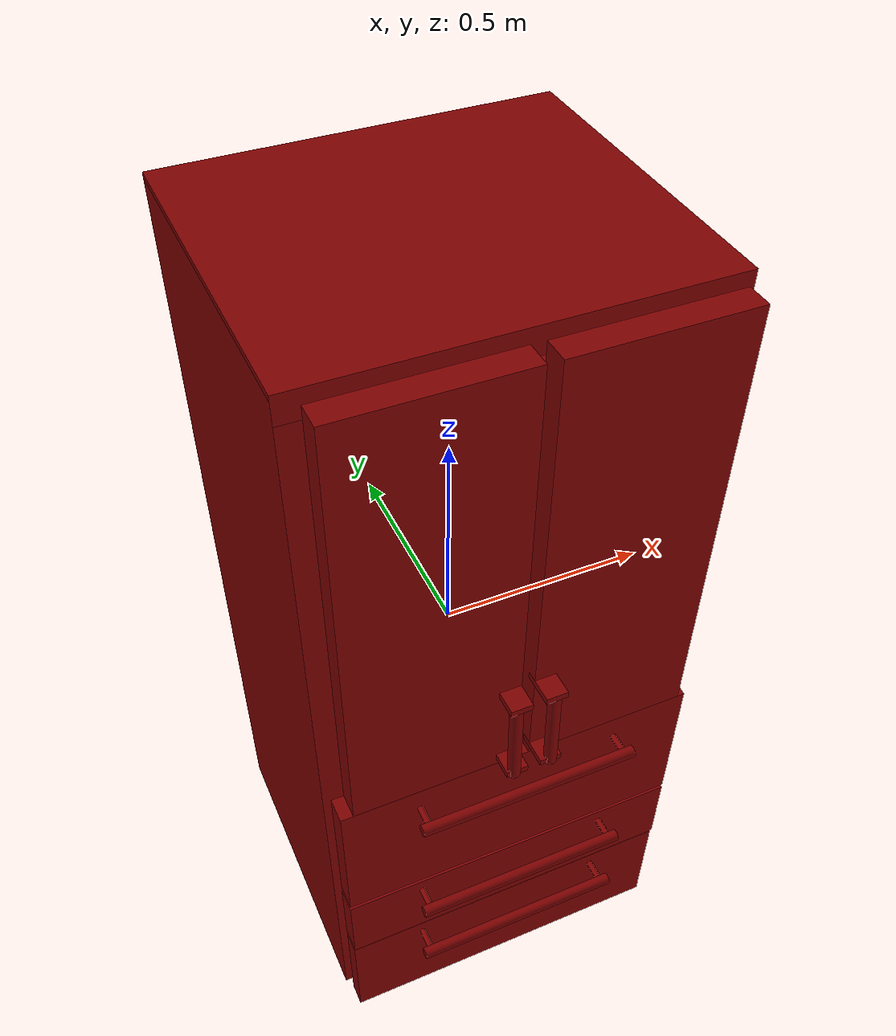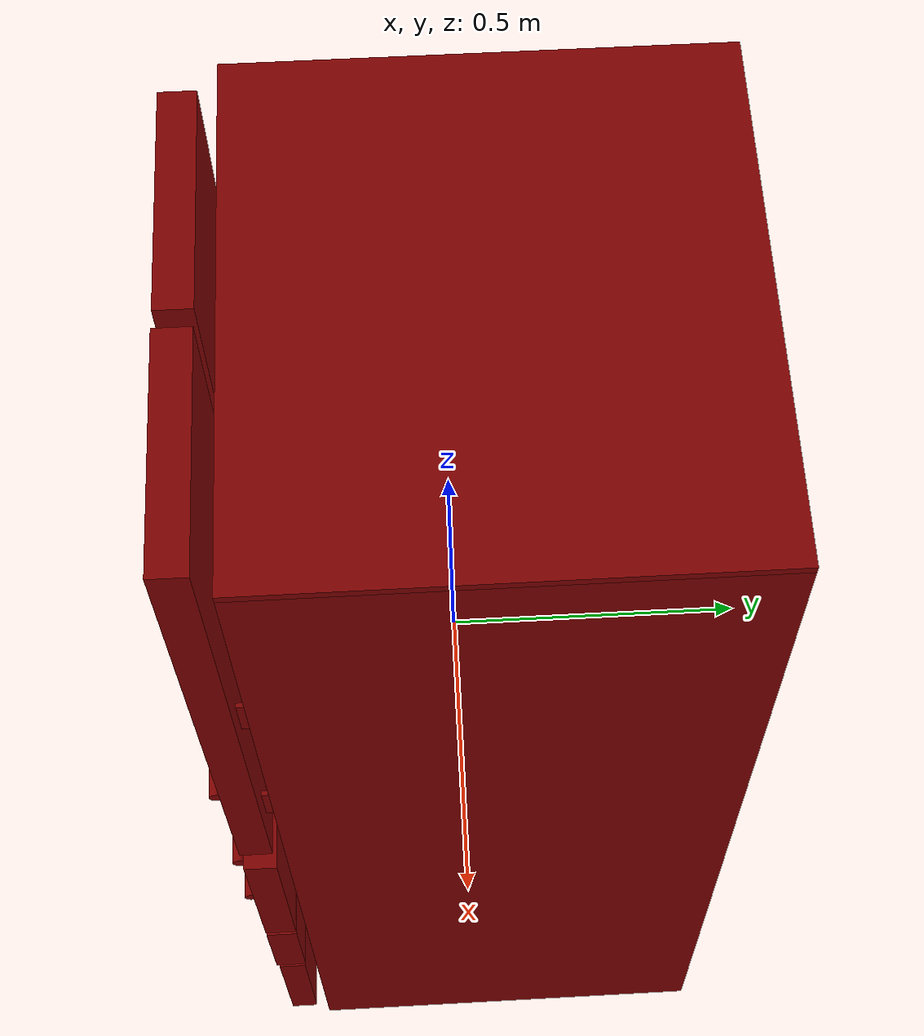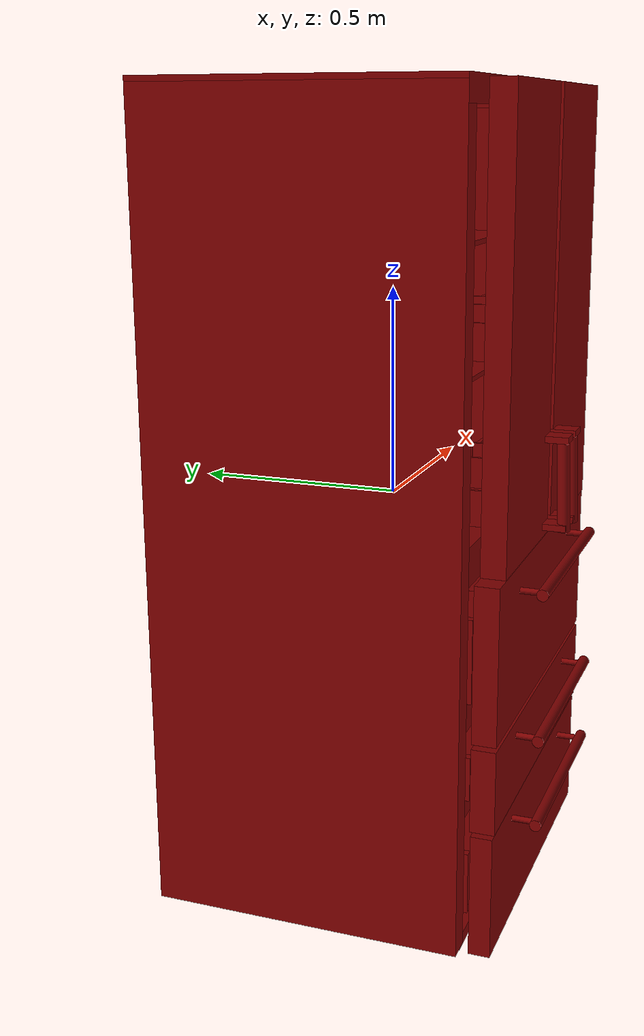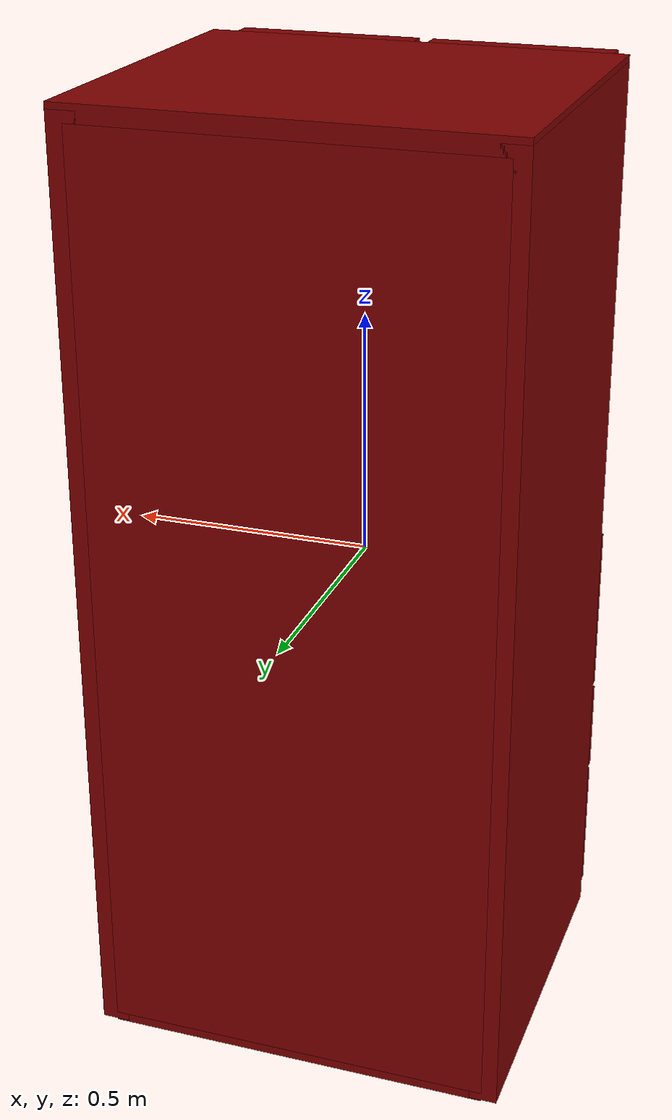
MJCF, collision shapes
<mujoco model="model">
  <compiler angle="radian"/>
  <asset>
    <mesh file="visuals/Body001.obj" name="Body001_vis"/>
    <mesh file="visuals/Body001_Clear.obj" name="Body001_Clear_vis"/>
    <mesh file="visuals/Door001.obj" name="Door001_vis"/>
    <mesh file="visuals/Door001_Clear.obj" name="Door001_Clear_vis"/>
    <mesh file="visuals/Door002.obj" name="Door002_vis"/>
    <mesh file="visuals/Door002_Clear.obj" name="Door002_Clear_vis"/>
    <mesh file="visuals/Drawer001.obj" name="Drawer001_vis"/>
    <mesh file="visuals/Drawer002.obj" name="Drawer002_vis"/>
    <mesh file="visuals/Drawer003.obj" name="Drawer003_vis"/>
    <texture file="visuals/T_BC001.png" name="Body001_material" type="2d"/>
    <material name="Body001_material" rgba="1 1 1 1.0" texture="Body001_material" shininess="0.5" specular="0.3103448502657381"/>
    <texture file="visuals/T_BC001.png" name="Body001_Clear_material" type="2d"/>
    <material name="Body001_Clear_material" rgba="1 1 1 0.26293104887008667" texture="Body001_Clear_material" shininess="0.5" specular="0.3103448502657381"/>
    <texture file="visuals/T_BC001.png" name="Door001_material" type="2d"/>
    <material name="Door001_material" rgba="1 1 1 1.0" texture="Door001_material" shininess="0.5" specular="0.3103448502657381"/>
    <texture file="visuals/T_BC001.png" name="Door001_Clear_material" type="2d"/>
    <material name="Door001_Clear_material" rgba="1 1 1 0.26293104887008667" texture="Door001_Clear_material" shininess="0.5" specular="0.3103448502657381"/>
    <texture file="visuals/T_BC001.png" name="Door002_material" type="2d"/>
    <material name="Door002_material" rgba="1 1 1 1.0" texture="Door002_material" shininess="0.5" specular="0.3103448502657381"/>
    <texture file="visuals/T_BC001.png" name="Door002_Clear_material" type="2d"/>
    <material name="Door002_Clear_material" rgba="1 1 1 0.26293104887008667" texture="Door002_Clear_material" shininess="0.5" specular="0.3103448502657381"/>
    <texture file="visuals/T_BC001.png" name="Drawer001_material" type="2d"/>
    <material name="Drawer001_material" rgba="1 1 1 1.0" texture="Drawer001_material" shininess="0.5" specular="0.3103448502657381"/>
    <texture file="visuals/T_BC001.png" name="Drawer002_material" type="2d"/>
    <material name="Drawer002_material" rgba="1 1 1 1.0" texture="Drawer002_material" shininess="0.5" specular="0.3103448502657381"/>
    <texture file="visuals/T_BC001.png" name="Drawer003_material" type="2d"/>
    <material name="Drawer003_material" rgba="1 1 1 1.0" texture="Drawer003_material" shininess="0.5" specular="0.3103448502657381"/>
  </asset>
  <default>
    <default class="visual">
      <geom conaffinity="0" contype="0" group="1" type="mesh"/>
    </default>
    <default class="collision">
      <geom group="0" rgba="0.5 0 0 0.5"/>
    </default>
    <default class="spawn">
      <geom group="0" rgba="1 1 1 0.5" contype="0" conaffinity="0"/>
      <site group="0" rgba="1 1 1 0.5"/>
    </default>
    <default class="region">
      <geom group="1" conaffinity="0" contype="0" rgba="0 1 0 0"/>
    </default>
  </default>
  <worldbody>
    <body>
      <body name="object">
        <geom mesh="Body001_vis" type="mesh" solimp="0.998 0.998 0.001" solref="0.001 1" density="100" friction="0.95 0.3 0.1" class="visual" material="Body001_material"/>
        <geom class="collision" type="box" pos="-0.00013399665476754308 0.08992300927639008 -0.08862584829330444" size="0.3999479413032532 0.36132264137268066 0.047052402049303055" quat="1.0 0.0 0.0 0.0"/>
        <geom class="collision" type="box" pos="-0.00013399665476754308 0.08992300927639008 -0.4449865221977234" size="0.3999479413032532 0.36132264137268066 0.04414277523756027" quat="1.0 0.0 0.0 0.0"/>
        <geom class="collision" type="box" pos="-0.00013399665476754308 0.08992300927639008 -0.6705933809280396" size="0.3999479413032532 0.36134281754493713 0.03672781214118004" quat="1.0 0.0 0.0 0.0"/>
        <geom class="collision" type="box" pos="-0.00013399908493738621 0.07406841963529587 -0.9527940154075623" size="0.39993706345558167 0.3777298033237457 0.015402181074023247" quat="1.0 0.0 0.0 0.0"/>
        <geom class="collision" type="box" pos="-0.00013371302338782698 0.07406841963529587 0.9426686763763428" size="0.4318050742149353 0.37774962186813354 0.029770761728286743" quat="1.0 0.0 0.0 0.0"/>
        <geom class="collision" type="box" pos="-0.40381813049316406 0.0740685984492302 -0.002807188080623746" size="0.02814168855547905 0.3777495324611664 0.9624706506729126" quat="1.0 0.0 0.0 0.0"/>
        <geom class="collision" type="box" pos="0.40243929624557495 0.0740685984492302 -0.0028071862179785967" size="0.029252616688609123 0.3777495324611664 0.9624706506729126" quat="1.0 0.0 0.0 0.0"/>
        <geom class="collision" type="box" pos="-0.00013399665476754308 0.42165252566337585 -0.006178800016641617" size="0.39993786811828613 0.030165748670697212 0.943178117275238" quat="1.0 0.0 0.0 0.0"/>
        <geom class="collision" type="box" pos="-0.0009517768048681319 -0.021683931350708008 0.27292436361312866" size="0.003756399964913726 0.1539125293493271 0.008033503778278828" quat="1.0 0.0 0.0 0.0"/>
        <geom class="collision" type="box" pos="-0.0009517768048681319 0.2594670057296753 0.25017231702804565" size="0.003756400430575013 0.1272384077310562 0.03078554943203926" quat="1.0 0.0 0.0 0.0"/>
        <geom class="collision" type="box" pos="0.32964959740638733 -0.021683931350708008 0.27292436361312866" size="0.0037564008962363005 0.1539125293493271 0.008033503778278828" quat="1.0 0.0 0.0 0.0"/>
        <geom class="collision" type="box" pos="0.32964959740638733 0.2594670057296753 0.25017231702804565" size="0.0037564013618975878 0.1272384077310562 0.03078554943203926" quat="1.0 0.0 0.0 0.0"/>
        <geom class="collision" type="box" pos="-0.3303408622741699 -0.021683931350708008 0.27292436361312866" size="0.003756401827558875 0.1539125293493271 0.008033503778278828" quat="1.0 0.0 0.0 0.0"/>
        <geom class="collision" type="box" pos="-0.3303408622741699 0.2594670057296753 0.25017231702804565" size="0.0037564022932201624 0.1272384077310562 0.03078554943203926" quat="1.0 0.0 0.0 0.0"/>
        <geom class="collision" type="box" pos="-0.0009517768048681319 -0.021683931350708008 0.5920451879501343" size="0.003756402526050806 0.1539125293493271 0.008033503778278828" quat="1.0 0.0 0.0 0.0"/>
        <geom class="collision" type="box" pos="-0.0009517768048681319 0.2594670057296753 0.569293200969696" size="0.0037564029917120934 0.1272384077310562 0.03078554943203926" quat="1.0 0.0 0.0 0.0"/>
        <geom class="collision" type="box" pos="0.32964959740638733 -0.021683931350708008 0.5920451879501343" size="0.0037564034573733807 0.1539125293493271 0.008033503778278828" quat="1.0 0.0 0.0 0.0"/>
        <geom class="collision" type="box" pos="0.32964959740638733 0.2594670057296753 0.569293200969696" size="0.003756403923034668 0.1272384077310562 0.03078554943203926" quat="1.0 0.0 0.0 0.0"/>
        <geom class="collision" type="box" pos="-0.3303408622741699 -0.021683931350708008 0.5920451879501343" size="0.0037564043886959553 0.1539125293493271 0.008033503778278828" quat="1.0 0.0 0.0 0.0"/>
        <geom class="collision" type="box" pos="-0.3303408622741699 0.2594670057296753 0.569293200969696" size="0.0037564048543572426 0.1272384077310562 0.03078554943203926" quat="1.0 0.0 0.0 0.0"/>
        <body name="Body001_Clear">
          <geom mesh="Body001_Clear_vis" type="mesh" solimp="0.998 0.998 0.001" solref="0.001 1" density="100" friction="0.95 0.3 0.1" class="visual" material="Body001_Clear_material"/>
          <geom class="collision" type="box" pos="-0.0001339873269898817 0.0815005749464035 0.6064627766609192" size="0.3406445384025574 0.2746870219707489 0.005757794715464115" quat="1.0 0.0 0.0 0.0"/>
          <geom class="collision" type="box" pos="-5.056137160863727e-05 0.0823388546705246 0.28686487674713135" size="0.3406445384025574 0.2746872305870056 0.005757797975093126" quat="1.0 0.0 0.0 0.0"/>
        </body>
        <body name="Door001">
          <joint axis="0.0 0.0 1.0" pos="-0.3906650245189667 -0.36281833052635193 0.47871339321136475" limited="true" name="Door001_joint" range="-1.5707963267948966 0.0" type="hinge" damping="1" frictionloss="1" armature=".01" stiffness="0.05"/>
          <geom mesh="Door001_vis" type="mesh" solimp="0.998 0.998 0.001" solref="0.001 1" density="100" friction="0.95 0.3 0.1" class="visual" material="Door001_material"/>
          <geom class="collision" type="cylinder" pos="-0.04257388040423393 -0.43277907371520996 0.0670875608921051" size="0.014736720360815525 0.11386329680681229" quat="0.9998373985290527 -0.018033701926469803 3.912507221913555e-18 -1.2637084595010522e-20"/>
          <geom class="collision" type="box" pos="-0.03813011571764946 -0.40497255325317383 0.17399856448173523" size="0.02466260828077793 0.04017599672079086 0.0076604317873716354" quat="1.0 0.0 0.0 0.0"/>
          <geom class="collision" type="box" pos="-0.03813011571764946 -0.40497255325317383 -0.03589688241481781" size="0.02466260828077793 0.040176019072532654 0.007660440169274807" quat="1.0 0.0 0.0 0.0"/>
          <geom class="collision" type="box" pos="-0.2022995948791504 -0.36200210452079773 0.4509809613227844" size="0.18996977806091309 0.02866901457309723 0.5130335688591003" quat="1.0 0.0 0.0 0.0"/>
          <body name="Door001_Clear">
            <geom mesh="Door001_Clear_vis" type="mesh" solimp="0.998 0.998 0.001" solref="0.001 1" density="100" friction="0.95 0.3 0.1" class="visual" material="Door001_Clear_material"/>
            <geom class="collision" type="box" pos="-0.21446019411087036 -0.2547178864479065 0.04439283907413483" size="0.14336563646793365 0.08087620139122009 0.003761761821806431" quat="1.0 0.0 0.0 0.0"/>
            <geom class="collision" type="box" pos="-0.21446019411087036 -0.34393417835235596 0.08027519285678864" size="0.14336274564266205 0.004682902246713638 0.03937854245305061" quat="1.0 0.0 0.0 0.0"/>
            <geom class="collision" type="box" pos="-0.21446019411087036 -0.17595385015010834 0.07698169350624084" size="0.14336563646793365 0.004683001432567835 0.03478723764419556" quat="1.0 0.0 0.0 0.0"/>
            <geom class="collision" type="box" pos="-0.07370350509881973 -0.2547178268432617 0.08126179873943329" size="0.003901827847585082 0.0808778703212738 0.03991582244634628" quat="1.0 0.0 0.0 0.0"/>
            <geom class="collision" type="box" pos="-0.35507452487945557 -0.2547178268432617 0.08064605295658112" size="0.0039018304087221622 0.0808778703212738 0.03991582617163658" quat="1.0 0.0 0.0 0.0"/>
            <geom class="collision" type="box" pos="-0.2144598811864853 -0.25241535902023315 0.401793897151947" size="0.14336563646793365 0.08087663352489471 0.0037617820780724287" quat="1.0 0.0 0.0 0.0"/>
            <geom class="collision" type="box" pos="-0.2144598811864853 -0.34393417835235596 0.43767619132995605" size="0.14336350560188293 0.0046829283237457275 0.03937894478440285" quat="1.0 0.0 0.0 0.0"/>
            <geom class="collision" type="box" pos="-0.2144598811864853 -0.173651322722435 0.43438273668289185" size="0.14336563646793365 0.004683001432567835 0.03478723764419556" quat="1.0 0.0 0.0 0.0"/>
            <geom class="collision" type="box" pos="-0.07370318472385406 -0.2524152994155884 0.4386628270149231" size="0.0039018546231091022 0.0808778703212738 0.039915814995765686" quat="1.0 0.0 0.0 0.0"/>
            <geom class="collision" type="box" pos="-0.3550742268562317 -0.2524152994155884 0.4380470812320709" size="0.0039018571842461824 0.0808778703212738 0.03991582244634628" quat="1.0 0.0 0.0 0.0"/>
          </body>
        </body>
        <body name="Door002">
          <joint axis="0.0 0.0 1.0" pos="0.3962591290473938 -0.3663555681705475 0.47871339321136475" limited="true" name="Door002_joint" range="0.0 1.5707963267948966" type="hinge" damping="1" frictionloss="1" armature=".01" stiffness="0.05"/>
          <geom mesh="Door002_vis" type="mesh" solimp="0.998 0.998 0.001" solref="0.001 1" density="100" friction="0.95 0.3 0.1" class="visual" material="Door002_material"/>
          <geom class="collision" type="cylinder" pos="0.04415471851825714 -0.43277907371520996 0.0670875608921051" size="0.014736720360815525 0.11386329680681229" quat="0.9998373985290527 -0.018033701926469803 3.912507221913555e-18 -1.2637084595010522e-20"/>
          <geom class="collision" type="box" pos="0.040982332080602646 -0.40497255325317383 0.17399856448173523" size="0.02466260828077793 0.040176037698984146 0.007660448085516691" quat="1.0 0.0 0.0 0.0"/>
          <geom class="collision" type="box" pos="0.040982332080602646 -0.40497255325317383 -0.03589688241481781" size="0.02466260828077793 0.04017606005072594 0.007660456467419863" quat="1.0 0.0 0.0 0.0"/>
          <geom class="collision" type="box" pos="0.2065921276807785 -0.3627628982067108 0.4509809613227844" size="0.18996977806091309 0.028669044375419617 0.5130335688591003" quat="1.0 0.0 0.0 0.0"/>
          <body name="Door002_Clear">
            <geom mesh="Door002_Clear_vis" type="mesh" solimp="0.998 0.998 0.001" solref="0.001 1" density="100" friction="0.95 0.3 0.1" class="visual" material="Door002_Clear_material"/>
            <geom class="collision" type="box" pos="0.21565814316272736 -0.2558399438858032 0.4017940163612366" size="0.14336563646793365 0.08087597787380219 0.0037617518100887537" quat="1.0 0.0 0.0 0.0"/>
            <geom class="collision" type="box" pos="0.21565814316272736 -0.35251206159591675 0.4376763105392456" size="0.143362358212471 0.004682888742536306 0.0393783338367939" quat="1.0 0.0 0.0 0.0"/>
            <geom class="collision" type="box" pos="0.21565814316272736 -0.17707596719264984 0.4343827962875366" size="0.14336563646793365 0.004683001432567835 0.03478723764419556" quat="1.0 0.0 0.0 0.0"/>
            <geom class="collision" type="box" pos="0.3564148545265198 -0.2558399438858032 0.43866294622421265" size="0.00390181434340775 0.0808778703212738 0.03991582244634628" quat="1.0 0.0 0.0 0.0"/>
            <geom class="collision" type="box" pos="0.07504381239414215 -0.2558399438858032 0.43804723024368286" size="0.003901817137375474 0.0808778703212738 0.03991582244634628" quat="1.0 0.0 0.0 0.0"/>
            <geom class="collision" type="box" pos="0.21565814316272736 -0.2619512677192688 0.04439293593168259" size="0.14336563646793365 0.0808764174580574 0.003761771833524108" quat="1.0 0.0 0.0 0.0"/>
            <geom class="collision" type="box" pos="0.21565814316272736 -0.3525121212005615 0.08027529716491699" size="0.1433631181716919 0.004682915285229683 0.03937874361872673" quat="1.0 0.0 0.0 0.0"/>
            <geom class="collision" type="box" pos="0.21565814316272736 -0.18318729102611542 0.0769817978143692" size="0.14336563646793365 0.004683001432567835 0.03478723764419556" quat="1.0 0.0 0.0 0.0"/>
            <geom class="collision" type="box" pos="0.356414794921875 -0.261951208114624 0.08126190304756165" size="0.0039018411189317703 0.0808778703212738 0.03991582244634628" quat="1.0 0.0 0.0 0.0"/>
            <geom class="collision" type="box" pos="0.07504381239414215 -0.261951208114624 0.08064614236354828" size="0.003901843912899494 0.0808778703212738 0.03991582617163658" quat="1.0 0.0 0.0 0.0"/>
          </body>
        </body>
        <body name="Drawer001">
          <joint axis="0.0 -1.0 0.0" pos="-6.61473604850471e-05 -0.07093725353479385 -0.19967252016067505" limited="true" name="Drawer001_joint" range="0.0 0.4" type="slide" damping="1" frictionloss="1" armature=".01" stiffness="0.05"/>
          <geom mesh="Drawer001_vis" type="mesh" solimp="0.998 0.998 0.001" solref="0.001 1" density="100" friction="0.95 0.3 0.1" class="visual" material="Drawer001_material"/>
          <geom class="collision" type="box" pos="-0.00013399665476754308 -0.3565518260002136 -0.25507447123527527" size="0.41926464438438416 0.028597401455044746 0.18305349349975586" quat="1.0 0.0 0.0 0.0"/>
          <geom class="collision" type="box" pos="-0.0015341822290793061 -0.003176530823111534 -0.3658425211906433" size="0.34967049956321716 0.3050306737422943 0.008901764638721943" quat="1.0 0.0 0.0 0.0"/>
          <geom class="collision" type="box" pos="-0.0015341717517003417 0.3009103238582611 -0.2741187810897827" size="0.3496655821800232 0.010402655228972435 0.10074516385793686" quat="1.0 0.0 0.0 0.0"/>
          <geom class="collision" type="box" pos="0.341799795627594 -0.0031763073056936264 -0.27350088953971863" size="0.009476777166128159 0.3050200343132019 0.0995514839887619" quat="1.0 0.0 0.0 0.0"/>
          <geom class="collision" type="box" pos="-0.3445224463939667 -0.003176345955580473 -0.27495795488357544" size="0.009476783685386181 0.30502021312713623 0.0995514988899231" quat="1.0 0.0 0.0 0.0"/>
          <geom class="collision" type="cylinder" pos="0.23993445932865143 -0.4070470333099365 -0.13443587720394135" size="0.007350651081651449 0.033181332051754" quat="0.5 0.5 0.4999999701976776 -0.5"/>
          <geom class="collision" type="cylinder" pos="-0.2377200722694397 -0.4070470333099365 -0.13443587720394135" size="0.007350651081651449 0.033181332051754" quat="0.5 0.5 0.4999999701976776 -0.5"/>
          <geom class="collision" type="cylinder" pos="0.0008211028762161732 -0.440376341342926 -0.13434341549873352" size="0.013850869610905647 0.25877225399017334" quat="0.7071068286895752 -0.0 0.7071067690849304 0.0"/>
        </body>
        <body name="Drawer002">
          <joint axis="0.0 -1.0 0.0" pos="-6.523937918245792e-05 -0.07093720883131027 -0.494493305683136" limited="true" name="Drawer002_joint" range="0.0 0.4" type="slide" damping="1" frictionloss="1" armature=".01" stiffness="0.05"/>
          <geom mesh="Drawer002_vis" type="mesh" solimp="0.998 0.998 0.001" solref="0.001 1" density="100" friction="0.95 0.3 0.1" class="visual" material="Drawer002_material"/>
          <geom class="collision" type="box" pos="-0.00013399665476754308 -0.3564911484718323 -0.5496636033058167" size="0.42000454664230347 0.028597764670848846 0.09994048625230789" quat="1.0 0.0 0.0 0.0"/>
          <geom class="collision" type="box" pos="-0.0015341822290793061 -0.003176530823111534 -0.6066038608551025" size="0.3496662974357605 0.30502045154571533 0.005006982013583183" quat="1.0 0.0 0.0 0.0"/>
          <geom class="collision" type="box" pos="-0.0015341822290793061 0.3009103238582611 -0.558436930179596" size="0.34967049956321716 0.010402848944067955 0.053243231028318405" quat="1.0 0.0 0.0 0.0"/>
          <geom class="collision" type="box" pos="0.341799795627594 -0.0031763073056936264 -0.5575311183929443" size="0.009476779028773308 0.305020809173584 0.053127553313970566" quat="1.0 0.0 0.0 0.0"/>
          <geom class="collision" type="box" pos="-0.3445224463939667 -0.003176345955580473 -0.5583506226539612" size="0.00947678554803133 0.3050209879875183 0.053127601742744446" quat="1.0 0.0 0.0 0.0"/>
          <geom class="collision" type="cylinder" pos="0.0008211028762161732 -0.440376341342926 -0.4872591197490692" size="0.013850869610905647 0.25877225399017334" quat="0.7071068286895752 -0.0 0.7071067690849304 0.0"/>
          <geom class="collision" type="cylinder" pos="-0.2377200722694397 -0.4070470333099365 -0.48735159635543823" size="0.007350651081651449 0.033181332051754" quat="0.5 0.5 0.4999999701976776 -0.5"/>
          <geom class="collision" type="cylinder" pos="0.23993445932865143 -0.4070470333099365 -0.48735159635543823" size="0.007350651081651449 0.033181332051754" quat="0.5 0.5 0.4999999701976776 -0.5"/>
        </body>
        <body name="Drawer003">
          <joint axis="0.0 -1.0 0.0" pos="-6.584473885595798e-05 -0.07093723863363266 -0.7898380756378174" limited="true" name="Drawer003_joint" range="0.0 0.4" type="slide" damping="1" frictionloss="1" armature=".01" stiffness="0.05"/>
          <geom mesh="Drawer003_vis" type="mesh" solimp="0.998 0.998 0.001" solref="0.001 1" density="100" friction="0.95 0.3 0.1" class="visual" material="Drawer003_material"/>
          <geom class="collision" type="box" pos="-0.00013399665476754308 -0.35537487268447876 -0.8095715045928955" size="0.42000454664230347 0.02528861165046692 0.14819277822971344" quat="1.0 0.0 0.0 0.0"/>
          <geom class="collision" type="box" pos="-0.0015341822290793061 -0.0022853966802358627 -0.88841313123703" size="0.34967049956321716 0.30502811074256897 0.008901764638721943" quat="1.0 0.0 0.0 0.0"/>
          <geom class="collision" type="box" pos="-0.0015341717517003417 0.301801472902298 -0.8183022737503052" size="0.34966740012168884 0.010402655228972435 0.07913287729024887" quat="1.0 0.0 0.0 0.0"/>
          <geom class="collision" type="box" pos="0.341799795627594 -0.002285158261656761 -0.8207427859306335" size="0.009476828388869762 0.30502158403396606 0.07488018274307251" quat="1.0 0.0 0.0 0.0"/>
          <geom class="collision" type="box" pos="-0.3445224463939667 -0.0022852118127048016 -0.8221998810768127" size="0.009476834908127785 0.3050217628479004 0.0748801976442337" quat="1.0 0.0 0.0 0.0"/>
          <geom class="collision" type="cylinder" pos="0.23993445932865143 -0.4070470333099365 -0.6989222764968872" size="0.007350651081651449 0.033181332051754" quat="0.5 0.5 0.4999999701976776 -0.5"/>
          <geom class="collision" type="cylinder" pos="-0.2377200722694397 -0.4070470333099365 -0.6989222764968872" size="0.007350651081651449 0.033181332051754" quat="0.5 0.5 0.4999999701976776 -0.5"/>
          <geom class="collision" type="cylinder" pos="0.0008211028762161732 -0.440376341342926 -0.6988297700881958" size="0.013850869610905647 0.25877225399017334" quat="0.7071068286895752 -0.0 0.7071067690849304 0.0"/>
        </body>
        <geom class="region" name="reg_main" type="box" pos="-7.450580596923828e-09 0.028335437178611755 0.0" size="0.4319606423377991 0.4258917570114136 0.9724394083023071"/>
      </body>
    </body>
  </worldbody>
  <actuator>
    <motor name="Door001_joint_actuator" joint="Door001_joint" gear="50"/>
    <motor name="Door002_joint_actuator" joint="Door002_joint" gear="50"/>
    <motor name="Drawer001_joint_actuator" joint="Drawer001_joint" gear="50"/>
    <motor name="Drawer002_joint_actuator" joint="Drawer002_joint" gear="50"/>
    <motor name="Drawer003_joint_actuator" joint="Drawer003_joint" gear="50"/>
  </actuator>
</mujoco>
